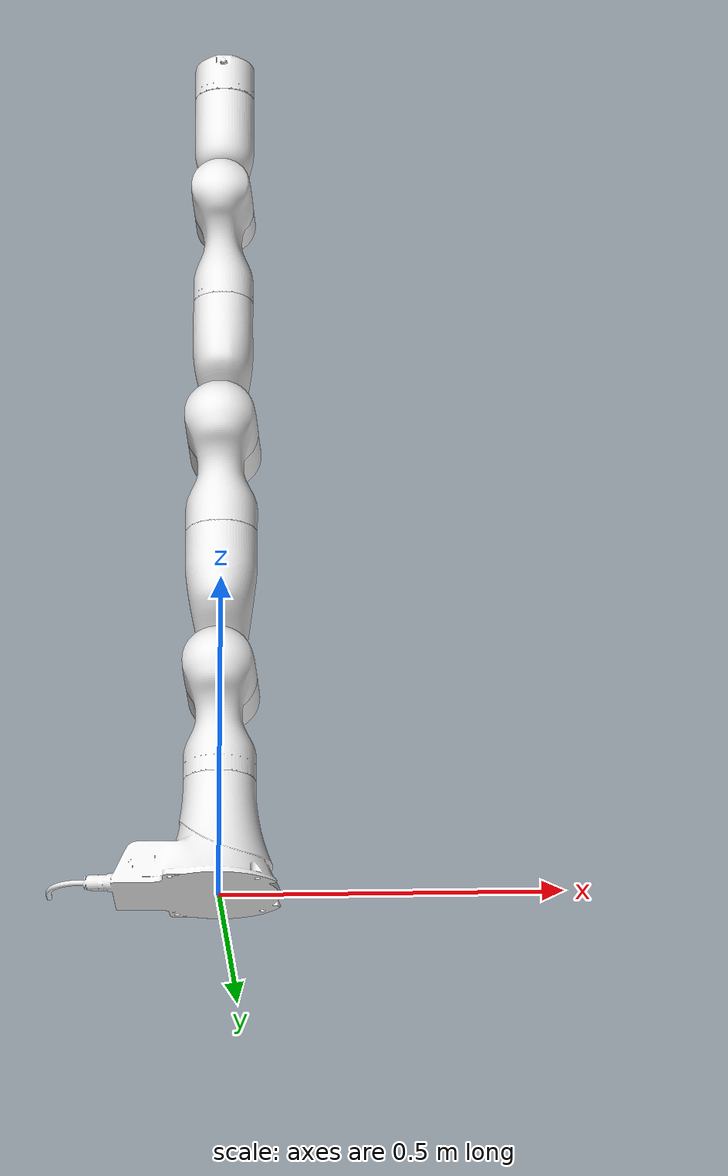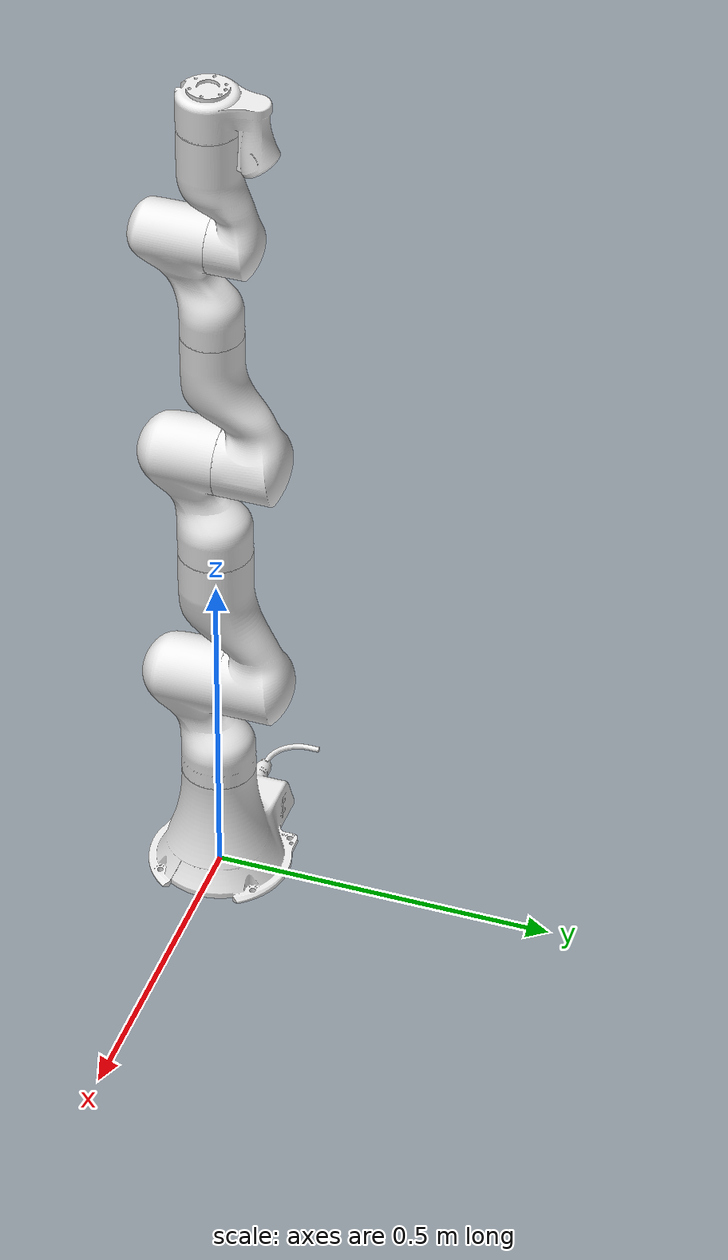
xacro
<?xml version="1.0"?>
<!-- xMatePro3 manipulator -->

<!--  Attention!!! inertia in the model is not correct!!! -->

<robot name="xMatePro3" xmlns:xacro="http://www.ros.org/wiki/xacro">

  <!-- Constants for robot dimensions -->

  <!-- Import all Gazebo-customization elements, including Gazebo colors -->
  <!--xacro:include filename="$(find xMatePro3_description)/urdf/xMatePro3.gazebo" /-->
  <!-- Import Rviz colors -->
  <xacro:include filename="$(find rokae_description)/urdf/materials.xacro" />
  <xacro:property name="nameofManipulator" value = "xMatePro3"/>

  <!-- Used for fixing robot to Gazebo 'base_link' -->
  <link name="world"/>
    <joint name="fixed" type="fixed">
    <parent link="world"/>
    <child link="${nameofManipulator}_base"/>
  </joint>

<!--base-->
  <link name="${nameofManipulator}_base">
    <visual>
      <geometry>
        <mesh filename="package://rokae_description/meshes/xMatePro3/visual/${nameofManipulator}_base.stl" scale="0.001 0.001 0.001"/>
      </geometry>
       <origin rpy="0 0 0" xyz="0.0 0.0 0.0"/>
       <material name="white"/>
    </visual>
    <inertial>

  <mass value="5.48267"/>
  <inertia ixx="0.0256" ixy="0" ixz="0" iyy="0.0266" iyz="0" izz="0.0235"/>
  <origin rpy="0 0 0" xyz="-0.0183 0 0.067"/>
    </inertial>
    <collision>
      <geometry>
        <mesh filename="package://rokae_description/meshes/xMatePro3/collision/${nameofManipulator}_base.stl" scale="0.001 0.001 0.001"/>
      </geometry>
      <origin rpy="0 0 0" xyz="0.0 0.0 0.0"/>
    </collision>
  </link>

  <joint name="joint1" type="revolute">
    <parent link="${nameofManipulator}_base"/>
    <child link="${nameofManipulator}_link1"/>
 <limit effort="102" lower="-2.9671" upper="2.9671" velocity="3.141592653589793"/>
    <axis xyz="0 0 1"/>
    <origin rpy="0 0 0" xyz="0 0 0"/>
 </joint>

<transmission name="tran1">
    <type>transmission_interface/SimpleTransmission</type>
    <joint name="joint1">
      <hardwareInterface>EffortJointInterface</hardwareInterface>
    </joint>
    <actuator name="motor1">
      <hardwareInterface>EffortJointInterface</hardwareInterface>
      <mechanicalReduction>1</mechanicalReduction>
    </actuator>
  </transmission>

<!--link 1-->
  <link name="${nameofManipulator}_link1">
    <visual>
      <geometry>
        <mesh filename="package://rokae_description/meshes/xMatePro3/visual/${nameofManipulator}_link1.stl" scale="0.001 0.001 0.001"/>
      </geometry>
      <origin rpy="0 0 0" xyz="0 0 0"/>
      <material name="white"/>
    </visual>

    <inertial>
     <mass value="3.12198"/>
     <inertia ixx="0.017" ixy="0" ixz="0" iyy="0.017" iyz="-0" izz="0.0212"/>
     <origin rpy="0 0 0" xyz="0 -0.012 0.303"/>

     </inertial>

    <collision>
      <geometry>
        <mesh filename="package://rokae_description/meshes/xMatePro3/collision/${nameofManipulator}_link1.stl" scale="0.001 0.001 0.001"/>
      </geometry>
       <origin rpy="0 0 0" xyz="0 0 0"/>
    </collision>
  </link>

  <joint name="joint2" type="revolute">
    <parent link="${nameofManipulator}_link1"/>
    <child link="${nameofManipulator}_link2"/>
  <limit effort="108" lower="-2.0944" upper="2.0944" velocity="2.6179938779914944"/>
    <axis xyz="0 1 0"/>
	<origin rpy="0 0 0" xyz="0 0 0.34260487"/>
    </joint>

   <transmission name="tran2">
     <type>transmission_interface/SimpleTransmission</type>
    <joint name="joint2">
      <hardwareInterface>EffortJointInterface</hardwareInterface>
    </joint>
    <actuator name="motor2">
      <hardwareInterface>EffortJointInterface</hardwareInterface>
      <mechanicalReduction>1</mechanicalReduction>
    </actuator>
  </transmission>

<!--link 2-->
  <link name="${nameofManipulator}_link2">
    <visual>
      <geometry>
        <mesh filename="package://rokae_description/meshes/xMatePro3/visual/${nameofManipulator}_link2.stl" scale="0.001 0.001 0.001"/>
      </geometry>
     <origin rpy="0 0 0" xyz="0 0 0.0"/>
     <material name="white"/>
    </visual>

    <inertial>
    <mass value="3.66021"/>
    <inertia ixx="0.0239" ixy="0" ixz="0" iyy="0.021643" iyz="0" izz="0.0207"/>
    <origin rpy="0 0 0" xyz="0 0.019 0.127"/>
    </inertial>

    <collision>
      <geometry>
        <mesh filename="package://rokae_description/meshes/xMatePro3/collision/${nameofManipulator}_link2.stl" scale="0.001 0.001 0.001"/>
      </geometry>
      <origin rpy="0 0 0" xyz="0 0 0.0"/>
    </collision>
  </link>

  <joint name="joint3" type="revolute">
    <parent link="${nameofManipulator}_link2"/>
    <child link="${nameofManipulator}_link3"/>
  <limit effort="102" lower="-2.9671" upper="2.9671" velocity="3.141592653589793"/>
    <axis xyz="0 0 1"/>
    <origin rpy="0 0 0" xyz="0 0 0.23743878"/>
  </joint>

   <transmission name="tran3">
    <type>transmission_interface/SimpleTransmission</type>
    <joint name="joint3">
      <hardwareInterface>EffortJointInterface</hardwareInterface>
    </joint>
    <actuator name="motor3">
      <hardwareInterface>EffortJointInterface</hardwareInterface>
      <mechanicalReduction>1</mechanicalReduction>
    </actuator>
  </transmission>

<!--link 3-->
  <link name="${nameofManipulator}_link3">
    <visual>
      <geometry>
        <mesh filename="package://rokae_description/meshes/xMatePro3/visual/${nameofManipulator}_link3.stl" scale="0.001 0.001 0.001"/>
      </geometry>
	<origin rpy="0 0 0" xyz="0 0 0.15549959"/>
      <material name="white"/>
    </visual>

    <inertial>
    <mass value="3.38219"/>
    <inertia ixx="0.018" ixy="0" ixz="0" iyy="0.017" iyz="0" izz="0.02112"/>
    <origin rpy="0 0 0" xyz="0 -0.011 -0.046"/>

    </inertial>

    <collision>
      <geometry>
        <mesh filename="package://rokae_description/meshes/xMatePro3/collision/${nameofManipulator}_link3.stl" scale="0.001 0.001 0.001"/>
      </geometry>
         <origin rpy="0 0 0" xyz="0 0 0.15549959"/>
      </collision>
  </link>

  <joint name="joint4" type="revolute">
    <parent link="${nameofManipulator}_link3"/>
    <child link="${nameofManipulator}_link4"/>
   <limit effort="102" lower="-2.0944" upper="2.0944" velocity="3.141592653589793"/>
<!--     lower="-2.79" upper="2.79" -->
    <axis xyz="0 1 0"/>
    <origin rpy="0 0 0" xyz="0 0 0.15549959"/>
  </joint>

  <transmission name="tran4">
    <type>transmission_interface/SimpleTransmission</type>
    <joint name="joint4">
      <hardwareInterface>EffortJointInterface</hardwareInterface>
    </joint>
    <actuator name="motor4">
      <hardwareInterface>EffortJointInterface</hardwareInterface>
      <mechanicalReduction>1</mechanicalReduction>
    </actuator>
  </transmission>

<!--link 4-->
  <link name="${nameofManipulator}_link4">
    <visual>
      <geometry>
        <mesh filename="package://rokae_description/meshes/xMatePro3/visual/${nameofManipulator}_link4.stl" scale=".001 0.001 0.001"/>
      </geometry>
	<origin rpy="0 0 0" xyz="0.0 0.0 0.0"/>
      <material name="white"/>
    </visual>
    <inertial>

    <mass value="2.73151"/>
    <inertia ixx="0.026" ixy="0" ixz="0" iyy="0.02114" iyz="0" izz="0.0205"/>
    <origin rpy="0 0 0" xyz="0 0.025 0.095"/>

    </inertial>
    <collision>
      <geometry>
        <mesh filename="package://rokae_description/meshes/xMatePro3/collision/${nameofManipulator}_link4.stl" scale="0.001 0.001 0.001"/>
      </geometry>
	<origin rpy="0 0 0" xyz="0.0 0.0 0.0"/>
    </collision>
  </link>

  <joint name="joint5" type="revolute">
    <parent link="${nameofManipulator}_link4"/>
    <child link="${nameofManipulator}_link5"/>
  <limit effort="29" lower="-2.9671" upper="2.9671" velocity="3.9269908169872414"/>
    <axis xyz="0 0 1"/>
   <origin rpy="0 0 0" xyz="0 0 0.22044633"/>
  </joint>

  <transmission name="tran5">
    <type>transmission_interface/SimpleTransmission</type>
    <joint name="joint5">
      <hardwareInterface>EffortJointInterface</hardwareInterface>
    </joint>
    <actuator name="motor5">
      <hardwareInterface>EffortJointInterface</hardwareInterface>
      <mechanicalReduction>1</mechanicalReduction>
    </actuator>
  </transmission>

<!--link 5-->
  <link name="${nameofManipulator}_link5">
    <visual>
      <geometry>
        <mesh filename="package://rokae_description/meshes/xMatePro3/visual/${nameofManipulator}_link5.stl" scale="0.001 0.001 0.001"/>
      </geometry>
       <origin rpy="0 0 0" xyz="0 0 0.14512568"/>
      <material name="white"/>
      </visual>

    <inertial>
      <mass value="2.21894"/>
    <inertia ixx="0.011" ixy="0" ixz="0" iyy="0.021" iyz="0" izz="0.0214"/>
      <origin rpy="0 0 0" xyz="0 -0.017 -0.045"/>
    </inertial>

    <collision>
      <geometry>
        <mesh filename="package://rokae_description/meshes/xMatePro3/collision/${nameofManipulator}_link5.stl" scale="0.001 0.001 0.001"/>
      </geometry>
       <origin rpy="0 0 0" xyz="0 0 0.14512568"/>
    </collision>
  </link>

  <joint name="joint6" type="revolute">
    <parent link="${nameofManipulator}_link5"/>
    <child link="${nameofManipulator}_link6"/>
   <limit effort="29" lower="-2.0944" upper="2.0944" velocity="3.9269908169872414"/>
    <axis xyz="0 1 0"/>
    <origin rpy="0.0 0.0 0" xyz="0 0 0.14512568" />
  </joint>

  <transmission name="tran6">
    <type>transmission_interface/SimpleTransmission</type>
    <joint name="joint6">
      <hardwareInterface>EffortJointInterface</hardwareInterface>
    </joint>
    <actuator name="motor6">
      <hardwareInterface>EffortJointInterface</hardwareInterface>
      <mechanicalReduction>1</mechanicalReduction>
    </actuator>
  </transmission>

<!--link 6-->
  <link name="${nameofManipulator}_link6">
    <visual>
      <geometry>
        <mesh filename="package://rokae_description/meshes/xMatePro3/visual/${nameofManipulator}_link6.stl" scale="0.001 0.001 0.001"/>
      </geometry>
	<origin rpy="0 0 0" xyz="0.0 0.0 0.0"/>
      <material name="white"/>
    </visual>

    <inertial>

      <mass value="2.18056"/>
      <inertia ixx="0.015" ixy="0" ixz="0" iyy="0.0225" iyz="0" izz="0.0202"/>
      <origin rpy="0 0 0" xyz="0 0.013 0.099"/>

    </inertial>

    <collision>
      <geometry>
        <mesh filename="package://rokae_description/meshes/xMatePro3/collision/${nameofManipulator}_link6.stl" scale="0.001 0.001 0.001"/>
      </geometry>
	<origin rpy="0 0 0" xyz="0.0 0.0 0.0"/>
    </collision>
  </link>

  <joint name="joint7" type="revolute">
    <parent link="${nameofManipulator}_link6"/>
    <child link="${nameofManipulator}_link7"/>
   <limit effort="29" lower="-6.2832" upper="6.2832" velocity="3.9269908169872414"/>
    <axis xyz="0 0 1"/>
    <origin rpy="0.0 0.0 0.0" xyz="0 0 0.25090877" />
  </joint>

  <transmission name="tran7">
    <type>transmission_interface/SimpleTransmission</type>
    <joint name="xmate_joint_7">
      <hardwareInterface>EffortJointInterface</hardwareInterface>
    </joint>
    <actuator name="motor7">
      <hardwareInterface>EffortJointInterface</hardwareInterface>
      <mechanicalReduction>1</mechanicalReduction>
    </actuator>
  </transmission>

<!--link 7-->
  <link name="${nameofManipulator}_link7">
    <visual>
      <geometry>
        <mesh filename="package://rokae_description/meshes/xMatePro3/visual/${nameofManipulator}_link7.stl" scale="0.001 0.001 0.001"/>
      </geometry>
	<origin rpy="0 0 0" xyz="0 0 0"/>
      <material name="white"/>
    </visual>

    <inertial>

      <mass value="0.94078"/>
      <inertia ixx="0.0201" ixy="0" ixz="0" iyy="0.0201" iyz="0" izz="0.0212"/>
      <origin rpy="0 0 0" xyz="0 0.011 -0.038"/>

    </inertial>

    <collision>
      <geometry>
        <mesh filename="package://rokae_description/meshes/xMatePro3/collision/${nameofManipulator}_link7.stl" scale="0.001 0.001 0.001"/>
      </geometry>
	<origin rpy="0 0 0" xyz="0 0 0"/>
    </collision>
  </link>

</robot>
